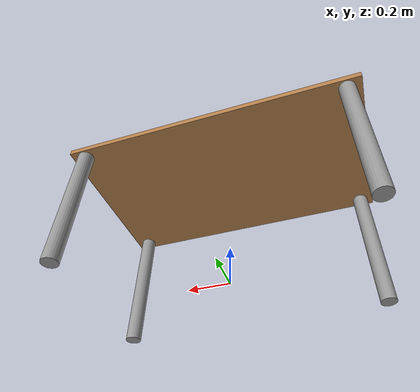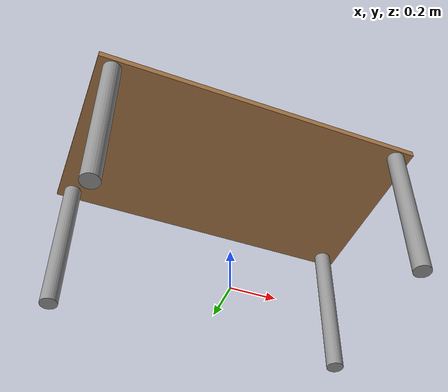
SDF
<?xml version='1.0'?>
<sdf version='1.7'>
  <model name='wood_table'>
    <static>1</static>
    <link name='link'>
      <collision name='surface'>
        <pose>0 0 0.7 0 -0 0</pose>
        <geometry>
          <box>
            <size>1.5 0.85 0.03</size>
          </box>
        </geometry>
        <surface>
          <friction>
            <ode>
              <mu>0.6</mu>
              <mu2>0.6</mu2>
            </ode>
          </friction>
        </surface>
      </collision>
      <visual name='visual1'>
        <pose>0 0 0.7 0 -0 0</pose>
        <geometry>
          <box>
            <size>1.5 0.85 0.03</size>
          </box>
        </geometry>
        <material>
          <script>
            <uri>file://media/materials/scripts/gazebo.material</uri>
            <name>Gazebo/Wood</name>
          </script>
        </material>
      </visual>
      <collision name='front_left_leg'>
        <pose>0.68 0.38 0.35 0 -0 0</pose>
        <geometry>
          <cylinder>
            <radius>0.04</radius>
            <length>0.7</length>
          </cylinder>
        </geometry>
      </collision>
      <visual name='front_left_leg'>
        <pose>0.68 0.38 0.35 0 -0 0</pose>
        <geometry>
          <cylinder>
            <radius>0.04</radius>
            <length>0.7</length>
          </cylinder>
        </geometry>
        <material>
          <script>
            <uri>file://media/materials/scripts/gazebo.material</uri>
            <name>Gazebo/Grey</name>
          </script>
        </material>
      </visual>
      <collision name='front_right_leg'>
        <pose>0.68 -0.38 0.35 0 -0 0</pose>
        <geometry>
          <cylinder>
            <radius>0.04</radius>
            <length>0.7</length>
          </cylinder>
        </geometry>
      </collision>
      <visual name='front_right_leg'>
        <pose>0.68 -0.38 0.35 0 -0 0</pose>
        <geometry>
          <cylinder>
            <radius>0.04</radius>
            <length>0.7</length>
          </cylinder>
        </geometry>
        <material>
          <script>
            <uri>file://media/materials/scripts/gazebo.material</uri>
            <name>Gazebo/Grey</name>
          </script>
        </material>
      </visual>
      <collision name='back_right_leg'>
        <pose>-0.68 -0.38 0.35 0 -0 0</pose>
        <geometry>
          <cylinder>
            <radius>0.04</radius>
            <length>0.7</length>
          </cylinder>
        </geometry>
      </collision>
      <visual name='back_right_leg'>
        <pose>-0.68 -0.38 0.35 0 -0 0</pose>
        <geometry>
          <cylinder>
            <radius>0.04</radius>
            <length>0.7</length>
          </cylinder>
        </geometry>
        <material>
          <script>
            <uri>file://media/materials/scripts/gazebo.material</uri>
            <name>Gazebo/Grey</name>
          </script>
        </material>
      </visual>
      <collision name='back_left_leg'>
        <pose>-0.68 0.38 0.35 0 -0 0</pose>
        <geometry>
          <cylinder>
            <radius>0.04</radius>
            <length>0.7</length>
          </cylinder>
        </geometry>
      </collision>
      <visual name='back_left_leg'>
        <pose>-0.68 0.38 0.35 0 -0 0</pose>
        <geometry>
          <cylinder>
            <radius>0.04</radius>
            <length>0.7</length>
          </cylinder>
        </geometry>
        <material>
          <script>
            <uri>file://media/materials/scripts/gazebo.material</uri>
            <name>Gazebo/Grey</name>
          </script>
        </material>
      </visual>
    </link>
    <pose>4e-06 -1e-06 -0 0 -0 0</pose>
  </model>
</sdf>
